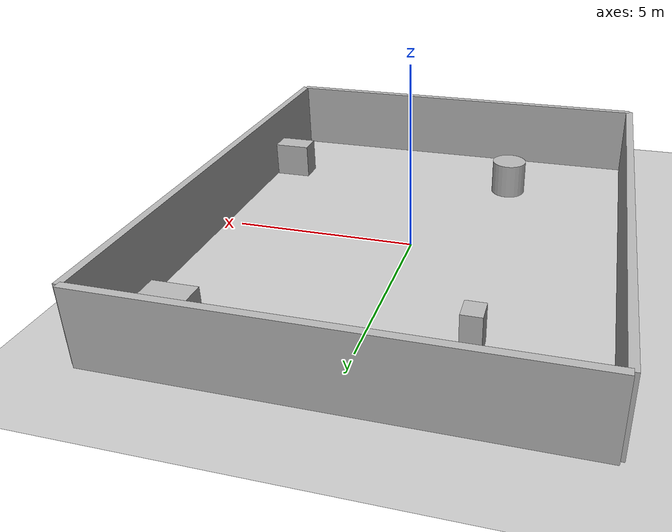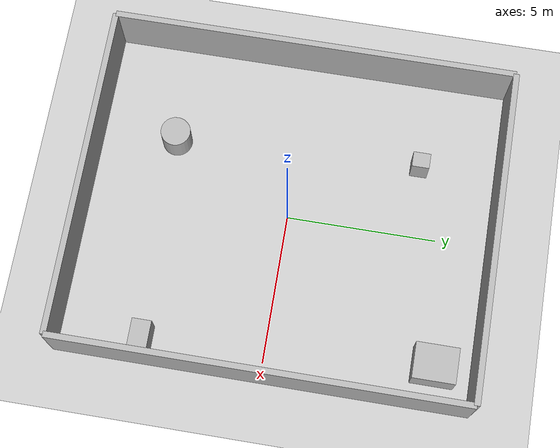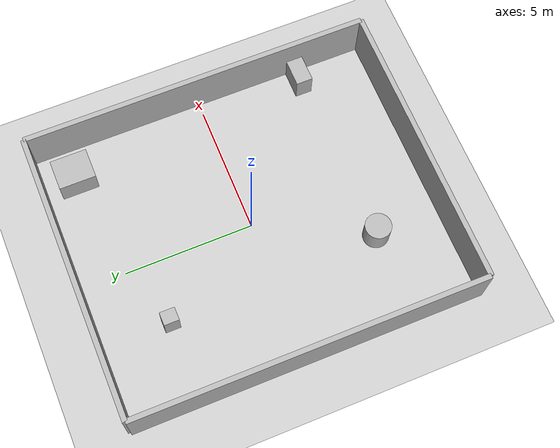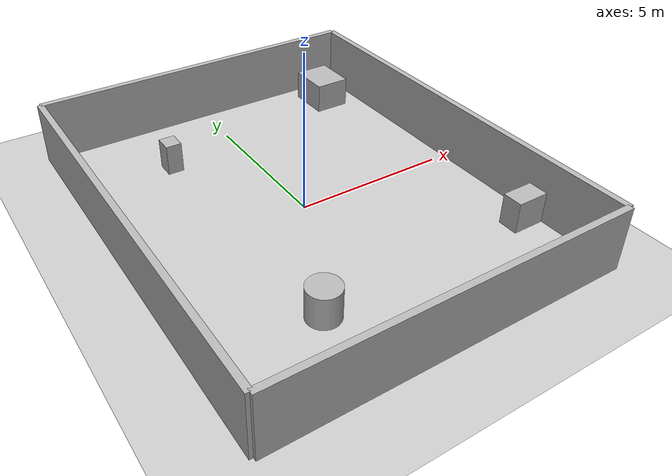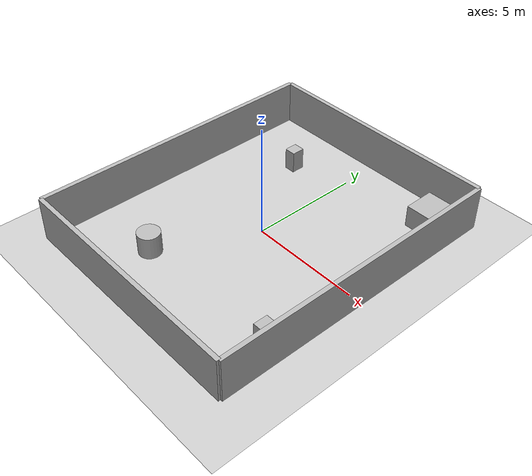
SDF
<?xml version="1.0"?>
<sdf version="1.6">
  <world name="env_93">

    <include><uri>model://ground_plane</uri></include>
    <include><uri>model://sun</uri></include>

    <!-- WALLS -->
    <model name="wall_north"><static>true</static><pose>0 6.778799241005169 1 0 0 0</pose>
      <link name="link"><collision name="collision">
        <geometry><box><size>11.114516754453387 0.2 2</size></box></geometry>
      </collision><visual name="visual">
        <geometry><box><size>11.114516754453387 0.2 2</size></box></geometry>
      </visual></link>
    </model>

    <model name="wall_south"><static>true</static><pose>0 -6.778799241005169 1 0 0 0</pose>
      <link name="link"><collision name="collision">
        <geometry><box><size>11.114516754453387 0.2 2</size></box></geometry>
      </collision><visual name="visual">
        <geometry><box><size>11.114516754453387 0.2 2</size></box></geometry>
      </visual></link>
    </model>

    <model name="wall_east"><static>true</static><pose>5.5572583772266935 0 1 0 0 1.57</pose>
      <link name="link"><collision name="collision">
        <geometry><box><size>13.557598482010338 0.2 2</size></box></geometry>
      </collision><visual name="visual">
        <geometry><box><size>13.557598482010338 0.2 2</size></box></geometry>
      </visual></link>
    </model>

    <model name="wall_west"><static>true</static><pose>-5.5572583772266935 0 1 0 0 1.57</pose>
      <link name="link"><collision name="collision">
        <geometry><box><size>13.557598482010338 0.2 2</size></box></geometry>
      </collision><visual name="visual">
        <geometry><box><size>13.557598482010338 0.2 2</size></box></geometry>
      </visual></link>
    </model>

    <!-- SENSOR -->

    <model name="lidar_sensor">
      <static>true</static>
      <pose>0.46201676746200704 -0.21893656113456839 0.4 0 0 0</pose>
      <link name="link">
        <sensor name="lidar" type="ray">
          <pose>0 0 0 0 0 0</pose>
          <visualize>true</visualize>
          <always_on>true</always_on>
          <update_rate>10</update_rate>
          <ray>
            <scan><horizontal>
              <samples>90</samples>
              <resolution>1</resolution>
              <min_angle>-3.14159</min_angle>
              <max_angle>3.14159</max_angle>
            </horizontal></scan>
            <range><min>0.15</min><max>20.0</max><resolution>0.01</resolution></range>
          </ray>
          <plugin name="lidar_plugin" filename="liblidar_plugin.so"/>
        </sensor>
      </link>
    </model>

    <!-- OBSTACLES -->

    <model name="obstacle_0">
      <static>true</static>
      <pose>-2.418728982017088 4.117757983002965 0.5 0 0 0</pose>
      <link name="link">
        <collision name="collision">
          <geometry><box><size>0.51 0.58 1.0</size></box></geometry>
        </collision>
        <visual name="visual">
          <geometry><box><size>0.51 0.58 1.0</size></box></geometry>
        </visual>
      </link>
    </model>

    <model name="obstacle_1">
      <static>true</static>
      <pose>-2.085372301938904 -4.15008636524655 0.5 0 0 0</pose>
      <link name="link">
        <collision name="collision">
          <geometry><cylinder><radius>0.5</radius><length>1.0</length></cylinder></geometry>
        </collision>
        <visual name="visual">
          <geometry><cylinder><radius>0.5</radius><length>1.0</length></cylinder></geometry>
        </visual>
      </link>
    </model>

    <model name="obstacle_2">
      <static>true</static>
      <pose>4.253029514970438 5.463329909924118 0.5 0 0 0</pose>
      <link name="link">
        <collision name="collision">
          <geometry><box><size>1.18 1.41 1.0</size></box></geometry>
        </collision>
        <visual name="visual">
          <geometry><box><size>1.18 1.41 1.0</size></box></geometry>
        </visual>
      </link>
    </model>

    <model name="obstacle_3">
      <static>true</static>
      <pose>4.917099848528318 -3.9897243352561804 0.5 0 0 0</pose>
      <link name="link">
        <collision name="collision">
          <geometry><box><size>1.04 0.64 1.0</size></box></geometry>
        </collision>
        <visual name="visual">
          <geometry><box><size>1.04 0.64 1.0</size></box></geometry>
        </visual>
      </link>
    </model>

  </world>
</sdf>
